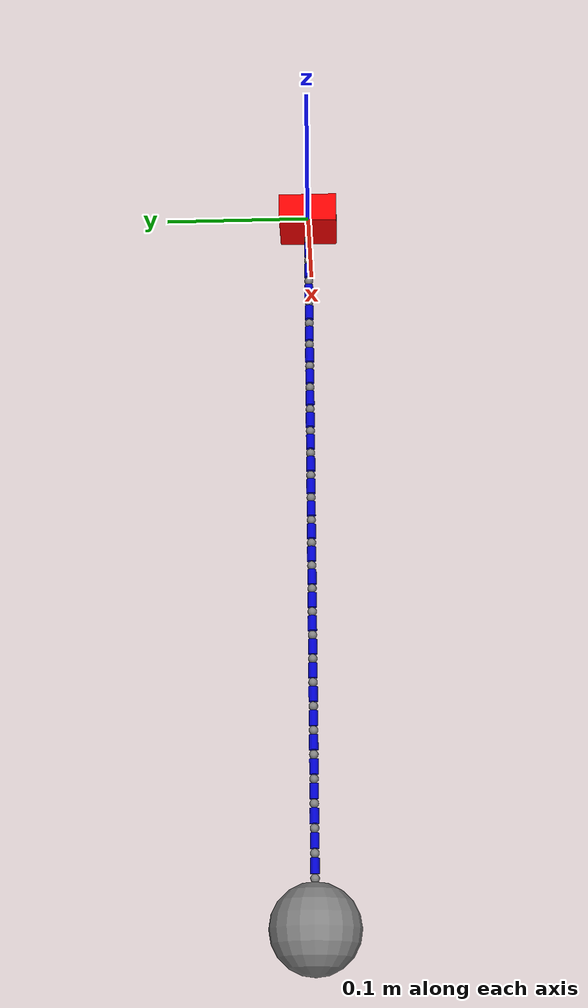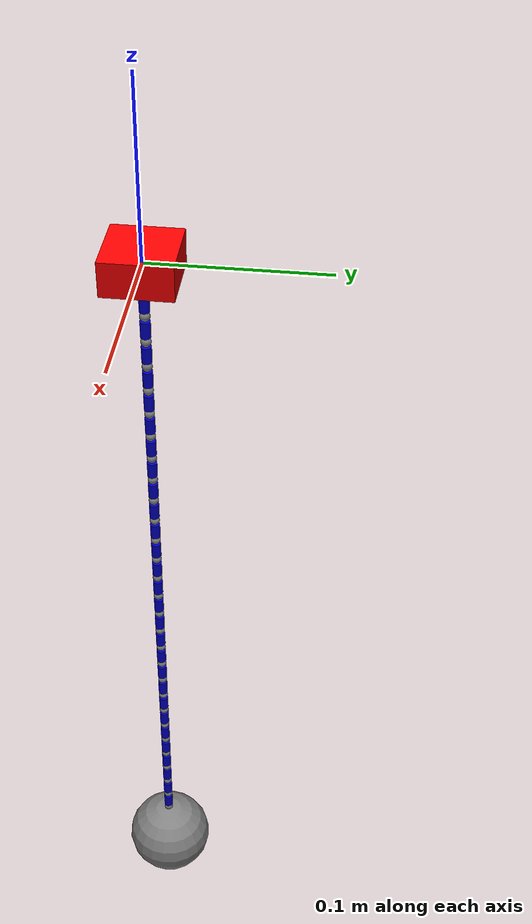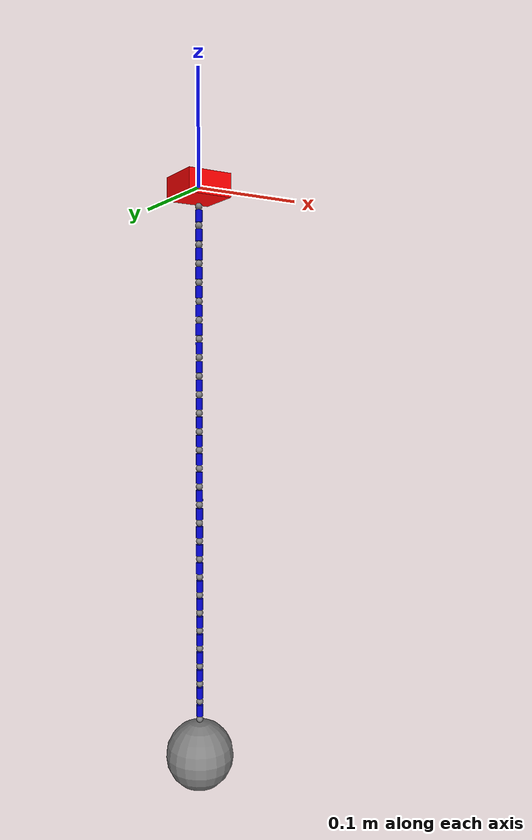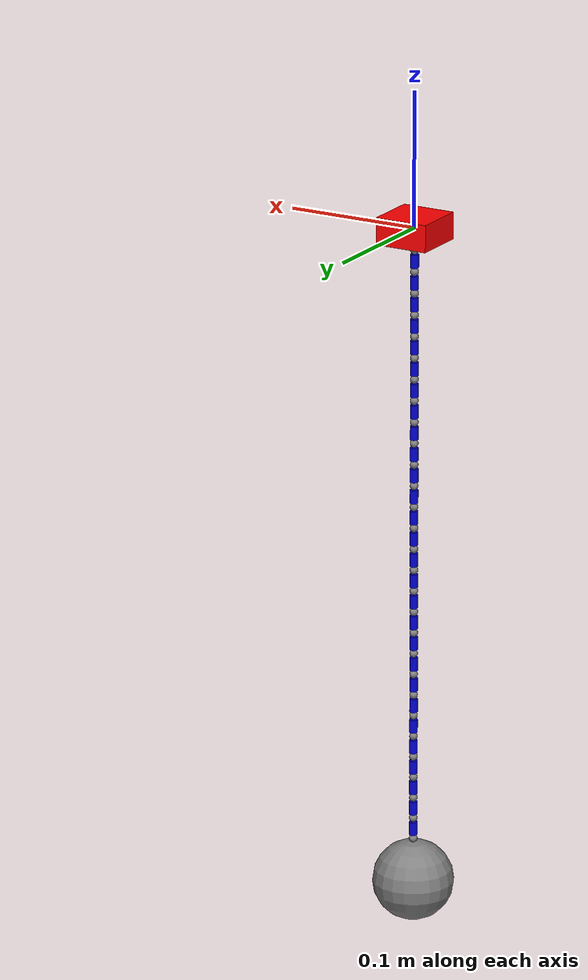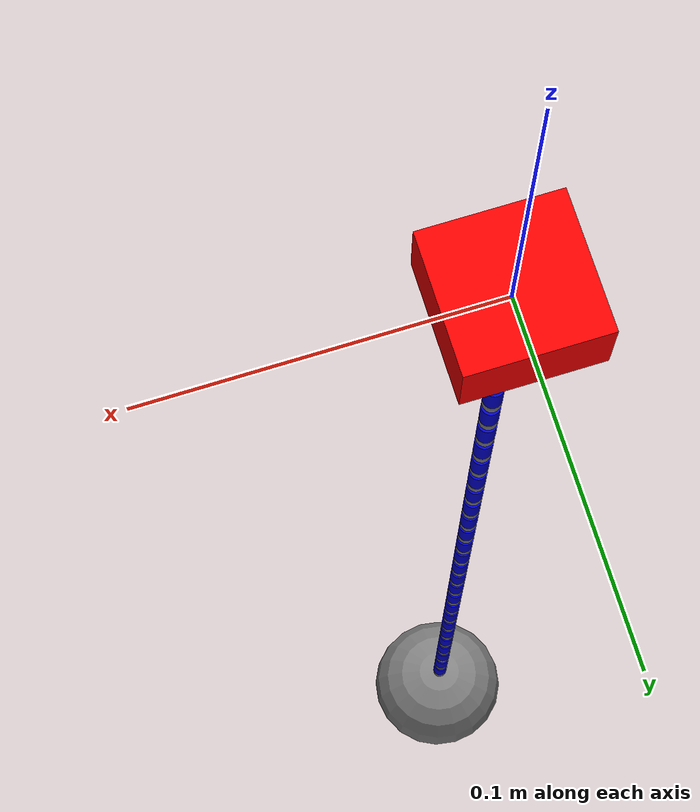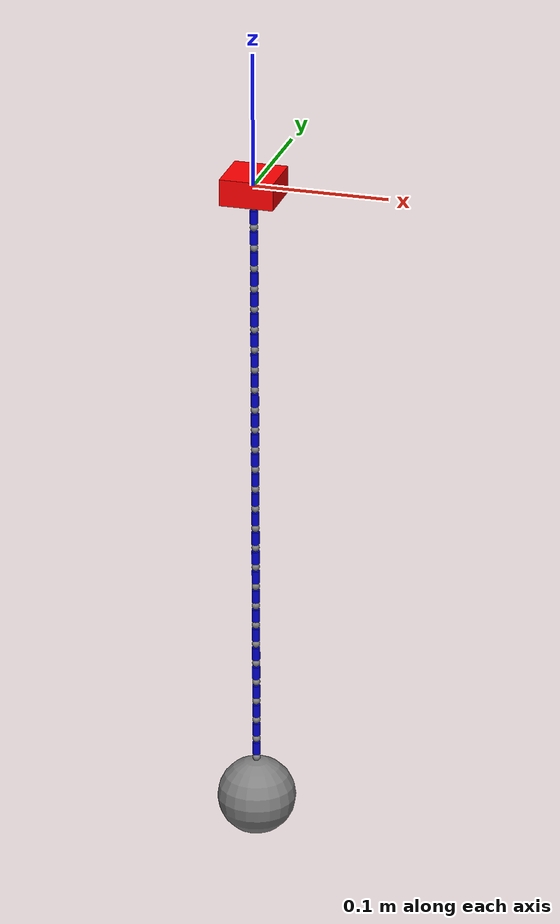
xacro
<?xml version="1.0"?>
<robot name="flexible_cable" xmlns:xacro="http://www.ros.org/wiki/xacro">

  <!-- Colors -->
  <xacro:property name="blue_color" value="0 0 0.8 1"/>
  <xacro:property name="red_color"  value="1 0 0 1"/>
  <xacro:property name="gray_color" value="0.5 0.5 0.5 1"/>

  <!-- Geometry / dynamics -->
  <xacro:property name="sphere_radius"   value="0.003"/>
  <xacro:property name="cylinder_radius" value="0.003"/>
  <xacro:property name="cylinder_length" value="0.01"/>
  <xacro:property name="damping"         value="0.001"/>
  <xacro:property name="friction"        value="0.0"/>

  <!-- Bottom ball -->
  <xacro:property name="ball_radius" value="0.03"/>
  <xacro:property name="ball_mass"   value="0.1"/>

  <!-- Materials -->
  <material name="blue"><color rgba="${blue_color}"/></material>
  <material name="gray"><color rgba="${gray_color}"/></material>

  <!-- World link (URDF 'world' is allowed as fixed-joint parent) -->
  <link name="world"/>

  <!-- Anchor block (the little red cube at the top) -->
  <link name="base_link">
    <visual>
      <geometry>
        <box size="${4*cylinder_length} ${4*cylinder_length} ${2*cylinder_length}"/>
      </geometry>
      <material name="red"><color rgba="${red_color}"/></material>
    </visual>
    <collision>
      <geometry>
        <box size="${4*cylinder_length} ${4*cylinder_length} ${2*cylinder_length}"/>
      </geometry>
    </collision>
    <inertial>
      <mass value="0.1"/>
      <inertia ixx="0.01" ixy="0" ixz="0" iyy="0.01" iyz="0" izz="0.01"/>
    </inertial>
  </link>

  <gazebo reference="base_link">
    <material>Gazebo/Gray</material>
    <selfCollide>false</selfCollide>
  </gazebo>

  <!-- IMPORTANT: let the spawn pose set the height (no extra offset here) -->
  <joint name="fixed_to_world" type="fixed">
    <parent link="world"/>
    <child link="base_link"/>
    <origin xyz="0 0 0" rpy="0 0 0"/>
  </joint>

  <!-- One cable segment (sphere + revolute + cylinder + revolute) -->
  <xacro:macro name="cable_segment" params="name parent">
    <!-- Spherical node (we keep revolute joints for stability, like the repo) -->
    <link name="${name}_sphere">
      <visual><geometry><sphere radius="${sphere_radius}"/></geometry><material name="gray"/></visual>
      <collision><geometry><sphere radius="${sphere_radius}"/></geometry></collision>
      <inertial>
        <mass value="0.005"/>
        <inertia ixx="0.0001" ixy="0" ixz="0" iyy="0.0001" iyz="0" izz="0.0001"/>
      </inertial>
    </link>

    <joint name="${parent}_to_${name}_sphere" type="revolute">
      <parent link="${parent}"/>
      <child  link="${name}_sphere"/>
      <origin xyz="0 0 ${-cylinder_length - 2*sphere_radius}" rpy="0 0 0"/>
      <axis xyz="0 1 0"/>
      <limit lower="-2.0" upper="2.0" effort="1" velocity="1"/>
      <dynamics damping="${damping}" friction="${friction}"/>
    </joint>

    <link name="${name}_cylinder">
      <visual>
        <geometry><cylinder length="${cylinder_length}" radius="${cylinder_radius}"/></geometry>
        <origin xyz="0 0 ${-cylinder_length/2 - sphere_radius}" rpy="0 0 0"/>
        <material name="blue"/>
      </visual>
      <collision>
        <geometry><cylinder length="${cylinder_length}" radius="${cylinder_radius}"/></geometry>
        <origin xyz="0 0 ${-cylinder_length/2 - sphere_radius}" rpy="0 0 0"/>
      </collision>
      <inertial>
        <mass value="0.001"/>
        <inertia ixx="0.001" ixy="0" ixz="0" iyy="0.001" iyz="0" izz="0.001"/>
        <origin xyz="0 0 ${-cylinder_length/2 - sphere_radius}" rpy="0 0 0"/>
      </inertial>
    </link>

    <joint name="${name}_sphere_to_cylinder" type="revolute">
      <parent link="${name}_sphere"/>
      <child  link="${name}_cylinder"/>
      <origin xyz="0 0 0" rpy="0 0 0"/>
      <axis xyz="1 0 0"/>
      <limit lower="-2.0" upper="2.0" effort="1" velocity="1"/>
      <dynamics damping="${damping}" friction="${friction}"/>
    </joint>

    <gazebo reference="${name}_sphere"><gravity>false</gravity><selfCollide>false</selfCollide></gazebo>
    <gazebo reference="${name}_cylinder"><gravity>false</gravity><selfCollide>false</selfCollide></gazebo>

  </xacro:macro>

  <!-- Build 50 segments (matches your file) -->
  <xacro:cable_segment name="segment_1"  parent="base_link"/>
  <xacro:cable_segment name="segment_2"  parent="segment_1_cylinder"/>
  <xacro:cable_segment name="segment_3"  parent="segment_2_cylinder"/>
  <xacro:cable_segment name="segment_4"  parent="segment_3_cylinder"/>
  <xacro:cable_segment name="segment_5"  parent="segment_4_cylinder"/>
  <xacro:cable_segment name="segment_6"  parent="segment_5_cylinder"/>
  <xacro:cable_segment name="segment_7"  parent="segment_6_cylinder"/>
  <xacro:cable_segment name="segment_8"  parent="segment_7_cylinder"/>
  <xacro:cable_segment name="segment_9"  parent="segment_8_cylinder"/>
  <xacro:cable_segment name="segment_10" parent="segment_9_cylinder"/>
  <xacro:cable_segment name="segment_11" parent="segment_10_cylinder"/>
  <xacro:cable_segment name="segment_12" parent="segment_11_cylinder"/>
  <xacro:cable_segment name="segment_13" parent="segment_12_cylinder"/>
  <xacro:cable_segment name="segment_14" parent="segment_13_cylinder"/>
  <xacro:cable_segment name="segment_15" parent="segment_14_cylinder"/>
  <xacro:cable_segment name="segment_16" parent="segment_15_cylinder"/>
  <xacro:cable_segment name="segment_17" parent="segment_16_cylinder"/>
  <xacro:cable_segment name="segment_18" parent="segment_17_cylinder"/>
  <xacro:cable_segment name="segment_19" parent="segment_18_cylinder"/>
  <xacro:cable_segment name="segment_20" parent="segment_19_cylinder"/>
  <xacro:cable_segment name="segment_21" parent="segment_20_cylinder"/>
  <xacro:cable_segment name="segment_22" parent="segment_21_cylinder"/>
  <xacro:cable_segment name="segment_23" parent="segment_22_cylinder"/>
  <xacro:cable_segment name="segment_24" parent="segment_23_cylinder"/>
  <xacro:cable_segment name="segment_25" parent="segment_24_cylinder"/>
  <xacro:cable_segment name="segment_26" parent="segment_25_cylinder"/>
  <xacro:cable_segment name="segment_27" parent="segment_26_cylinder"/>
  <xacro:cable_segment name="segment_28" parent="segment_27_cylinder"/>
  <xacro:cable_segment name="segment_29" parent="segment_28_cylinder"/>
  <xacro:cable_segment name="segment_30" parent="segment_29_cylinder"/>

  <!-- Bottom weight (bigger “ball” at the end) -->
  <link name="end_ball">
    <visual><geometry><sphere radius="${ball_radius}"/></geometry><material name="gray"/></visual>
    <collision><geometry><sphere radius="${ball_radius}"/></geometry></collision>
    <inertial>
      <mass value="${ball_mass}"/>
      <!-- Solid sphere inertia: I = 0.4*m*r^2 -->
      <inertia ixx="${0.4*ball_mass*ball_radius*ball_radius}" ixy="0" ixz="0"
               iyy="${0.4*ball_mass*ball_radius*ball_radius}" iyz="0"
               izz="${0.4*ball_mass*ball_radius*ball_radius}"/>
    </inertial>
  </link>

  <joint name="joint_end_ball" type="revolute">
    <parent link="segment_30_cylinder"/>
    <child  link="end_ball"/>
    <origin xyz="0 0 ${-cylinder_length - 2*sphere_radius}" rpy="0 0 0"/>
    <axis xyz="0 1 0"/>
    <limit lower="-1.57" upper="1.57" effort="1" velocity="1"/>
    <dynamics damping="${damping}" friction="${friction}"/>
  </joint>

  <!-- Gazebo model-wide hints -->
  <gazebo>
    <self_collide>false</self_collide>
  </gazebo>

</robot>
